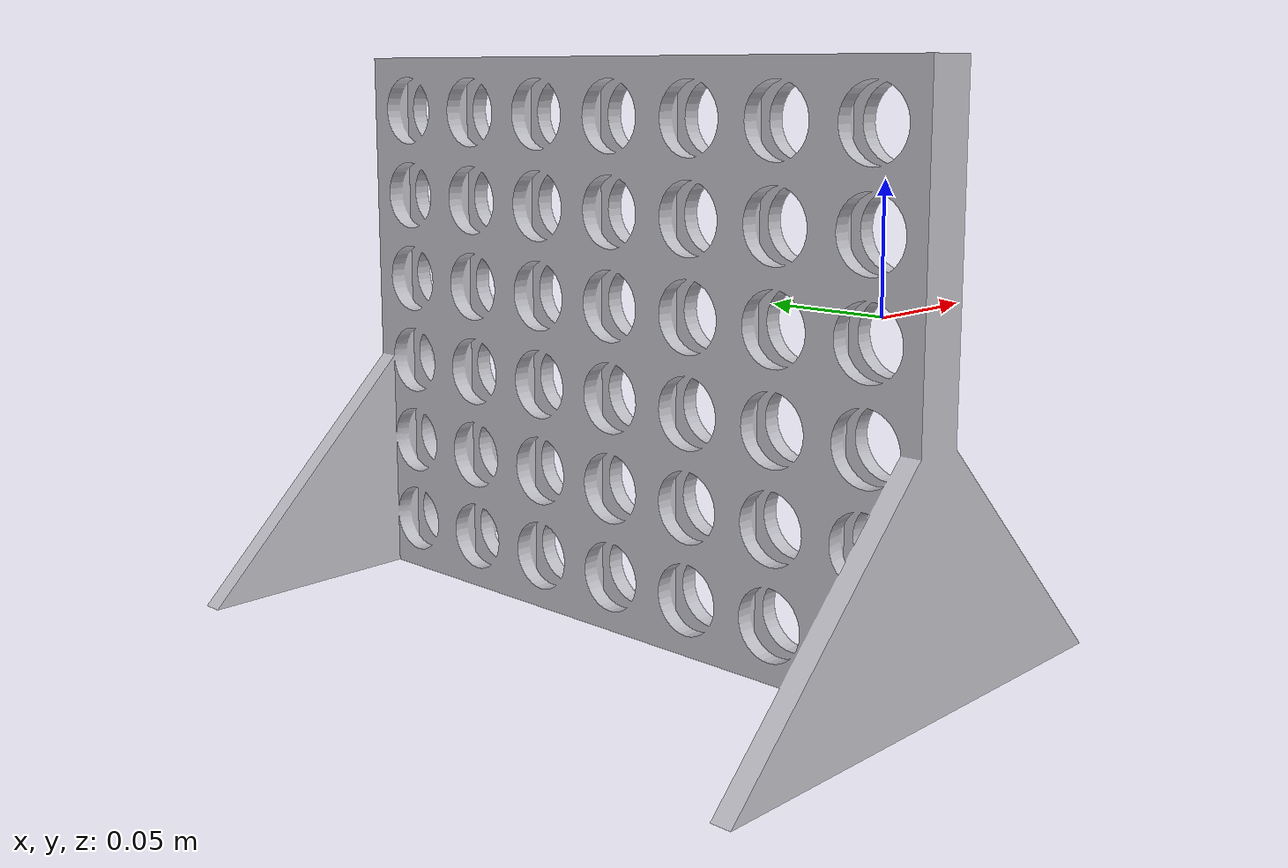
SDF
<?xml version='1.0' ?>
<sdf version='1.7'>
  <model name='connect4'>
    <static>true</static>
    <link name='base_link'>
      <inertial>
        <pose>-0.161334 -0.027247 0.000799 0 -0 0</pose>
        <mass>2.04265</mass>
        <inertia>
          <ixx>0.014489</ixx>
          <ixy>0</ixy>
          <ixz>0</ixz>
          <iyy>0.005333</iyy>
          <iyz>0</iyz>
          <izz>0.010137</izz>
        </inertia>
      </inertial>

      <collision name='base_link_collision'>
        <pose>0 0 0 0 -0 0</pose>
        <geometry>
          <mesh>
            <scale>0.001 0.001 0.001</scale>
            <uri>meshes/connect4.stl</uri>
          </mesh>
        </geometry>
        <surface>
          <contact>
            <ode/>
          </contact>
          <friction>
            <ode>
              <mu>0.2</mu>
              <mu2>0.2</mu2>
            </ode>
          </friction>
        </surface>
      </collision>

      <visual name='base_link_visual'>
        <pose>0 0 0 0 -0 0</pose>
        <geometry>
          <mesh>
            <scale>0.001 0.001 0.001</scale>
            <uri>meshes/connect4.stl</uri>
          </mesh>
        </geometry>
        <material>
          <script>
            <name>Gazebo/Silver</name>
            <uri>file://media/materials/scripts/gazebo.material</uri>
          </script>
        </material>
      </visual>
    </link>
  </model>
</sdf>
